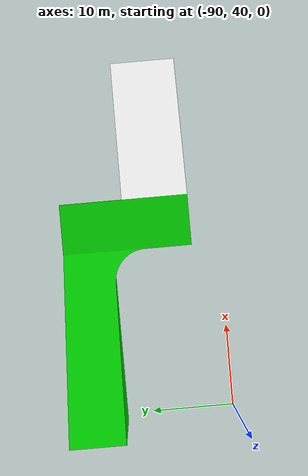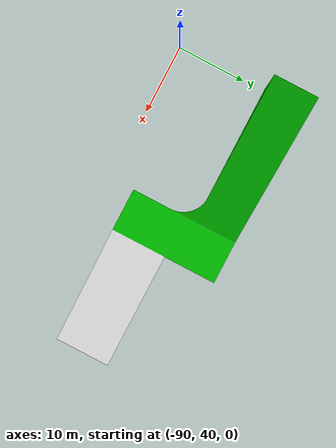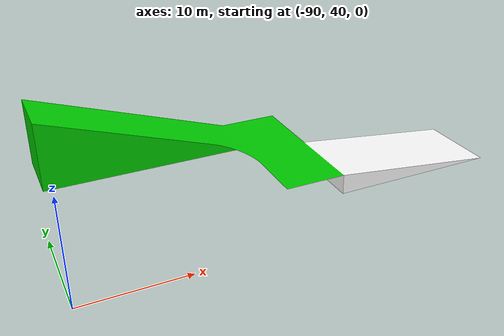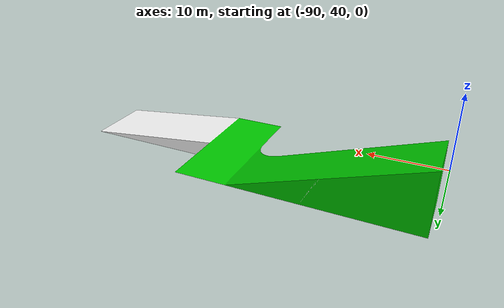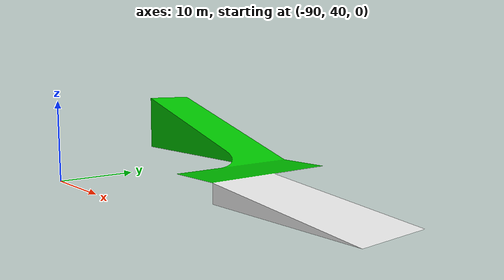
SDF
<?xml version="1.0" ?>
<sdf version="1.4">
  <model name="road_to_water">
    <static>true</static>
    <link name="walls">
      <collision name="collision">
        <geometry>
          <mesh>
            <uri>model://road_to_water/meshes/con.dae</uri>
          </mesh>
        </geometry>
      </collision>
      <visual name="visual">
        <geometry>
          <mesh>
            <uri>model://road_to_water/meshes/con.dae</uri>
          </mesh>
        </geometry>
        <cast_shadows>false</cast_shadows>
      </visual>
    </link>
  </model>
</sdf>
